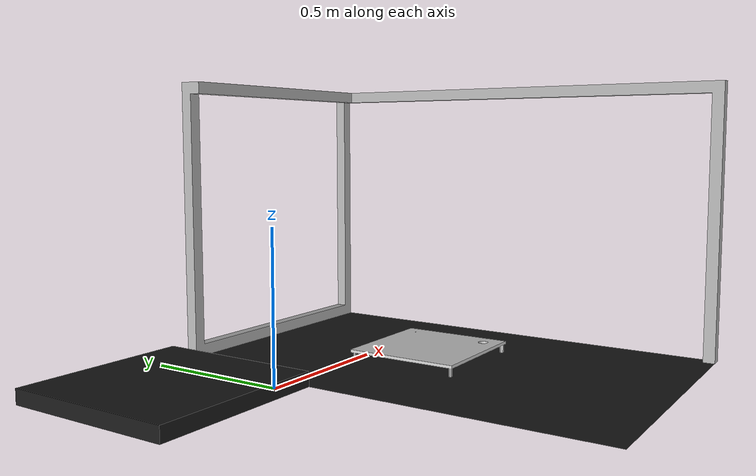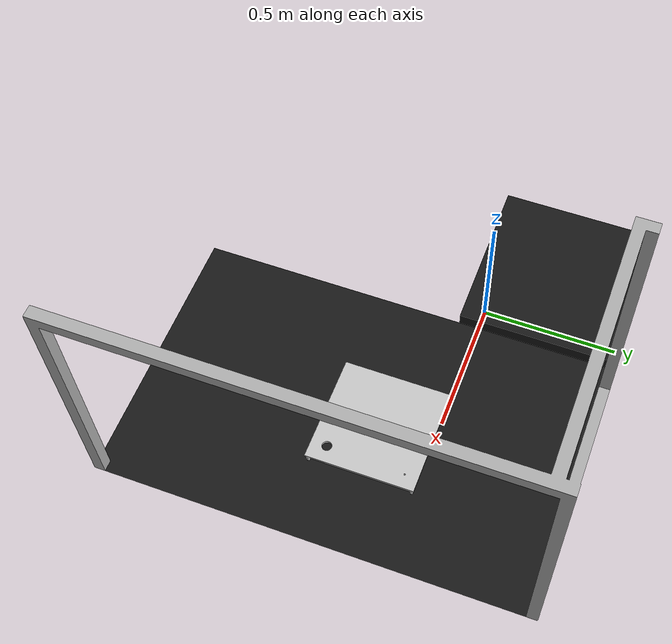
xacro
<?xml version="1.0"?>
<robot name="wrs_environment" xmlns:xacro="http://wiki.ros.org/xacro">

  <link name="taskboard_link">
    <inertial>
      <origin xyz="0.8 0 0.03" rpy="0 0 0" />
      <mass value="1.0" />
      <inertia  ixx="0.0" ixy="0.0"  ixz="0.0"  iyy="0.0"  iyz="0.0"  izz="0.0" />
    </inertial>
    <visual>
      <origin xyz="0.8 0 0.03" rpy="1.5708 0 -1.5708"/>
      <geometry>
	<mesh filename="package://wrs_description/meshes/collision/taskboard.stl" scale="0.001 0.001 0.001"/>
      </geometry>
      <material name="lightgray">
	<color rgba="0.8 0.8 0.8 1"/>
      </material>
    </visual>
    <collision>
      <origin xyz="0.8 0 0.03" rpy="1.5708 0 -1.5708"/>
      <geometry>
	<mesh filename="package://wrs_description/meshes/collision/taskboard.stl" scale="0.001 0.001 0.001"/>
      </geometry>
    </collision>
  </link>

  <gazebo reference="taskboard_link">
    <visual>
      <material>
	<ambient>0.8 0.8 0.8 1.0</ambient>
	<diffuse>0.9 0.9 0.9 1.0</diffuse>
	<specular>0.1 0.1 0.1 1.0</specular>
	<emissive>0.0 0.0 0.0 0.0</emissive>
      </material>
    </visual>
    <collision name="collision">
       <surface>
        <friction>
          <ode>
            <mu>0.2</mu>
            <mu2>0.2</mu2>
          </ode>
        </friction>
	  <bounce>
    <restitution_coefficient>0.01</restitution_coefficient>
    <threshold>0.01</threshold>
  </bounce>
  <contact>
    <ode>
      <max_vel>0.1</max_vel>
      <kd>1</kd>
      <kp>1000000.0</kp>
      <min_depth>0.001</min_depth>
    </ode>
  </contact>
      </surface>
     </collision>
  </gazebo>

   <link name="frame_link">
    <inertial>
      <origin xyz="0.145 0.525 0" rpy="0 0 -1.5708" />
      <mass value="1.0" />
      <inertia  ixx="0.0" ixy="0.0"  ixz="0.0"  iyy="0.0"  iyz="0.0"  izz="0.0" />
    </inertial>
    <visual>
      <origin xyz="0.145 0.525 0" rpy="0 0 -1.5708"/>
      <geometry>
	<mesh filename="package://wrs_description/meshes/collision/frame.stl" scale="0.001 0.001 0.001"/>
      </geometry>
      <material name="gray">
	<color rgba="0.7 0.7 0.7 1"/>
      </material>
    </visual>
    <collision>
      <origin xyz="0.145 0.525 0" rpy="0 0 -1.5708"/>
      <geometry>
	<mesh filename="package://wrs_description/meshes/collision/frame.stl" scale="0.001 0.001 0.001"/>
      </geometry>
    </collision>
  </link>
   <gazebo reference="frame_link">
  <visual>
  <material>
  <ambient>0.65 0.65 0.65 1.0</ambient>
  <diffuse>0.7 0.7 0.7 1.0</diffuse>
  <specular>0.9 0.9 0.9 1.0</specular>
  <emissive>0.0 0.0 0.0 0.0</emissive>
  </material>
  </visual>
  </gazebo>

 <link name="robot_base_link">
   <inertial>
     <origin xyz="0 0 0.025" rpy="0 0 0"/>
     <mass value="1"/>
     <inertia ixx="0"  ixy="0"  ixz="0" iyy="0" iyz="0" izz="0" />
   </inertial>
   <visual>
     <origin xyz="-0.225 0.225 0.025" rpy="0 0 0" />
     <geometry>
     <box size="0.6 0.6 0.05" />
     </geometry>
     <material name="">
       <color rgba="0.1 0.1 0.1 1" />
     </material>
   </visual>
 </link>
    <gazebo reference="robot_base_link">
      <material>Gazebo/DarkGrey</material>
    </gazebo>

     <link name="table_link">
   <inertial>
     <origin xyz="0 0 0" rpy="0 0 0"/>
     <mass value="1"/>
     <inertia ixx="0"  ixy="0"  ixz="0" iyy="0" iyz="0" izz="0" />
   </inertial>
   <visual>
     <origin xyz="0.575 -0.275 0.0001" rpy="0 0 0" />
     <geometry>
       <box size="1 1.60 0.0001" />
     </geometry>
     <material name="">
       <color rgba="0.1 0.1 0.1 1" />
     </material>
   </visual>
 </link>
    <gazebo reference="table_link">
      <visual>
  <material>
  <ambient>1 1 0 0.5</ambient>
  <diffuse>1 1 0 0.5</diffuse>
  </material>
  </visual>
    </gazebo>

  <gazebo reference="world">
    <static>true</static>
  </gazebo>

  <link name="world"/>

  <joint name="taskboard_fixed" type="fixed">
    <parent link="world"/>
    <child link="taskboard_link"/>
  </joint>

    <joint name="frame_fixed" type="fixed">
    <parent link="world"/>
    <child link="frame_link"/>
  </joint>

  <joint name="robot_base_fixed" type="fixed">
    <parent link="world"/>
    <child link="robot_base_link"/>
  </joint>

  <joint name="table_fixed" type="fixed">
    <parent link="world"/>
    <child link="table_link"/>
  </joint>

</robot>
